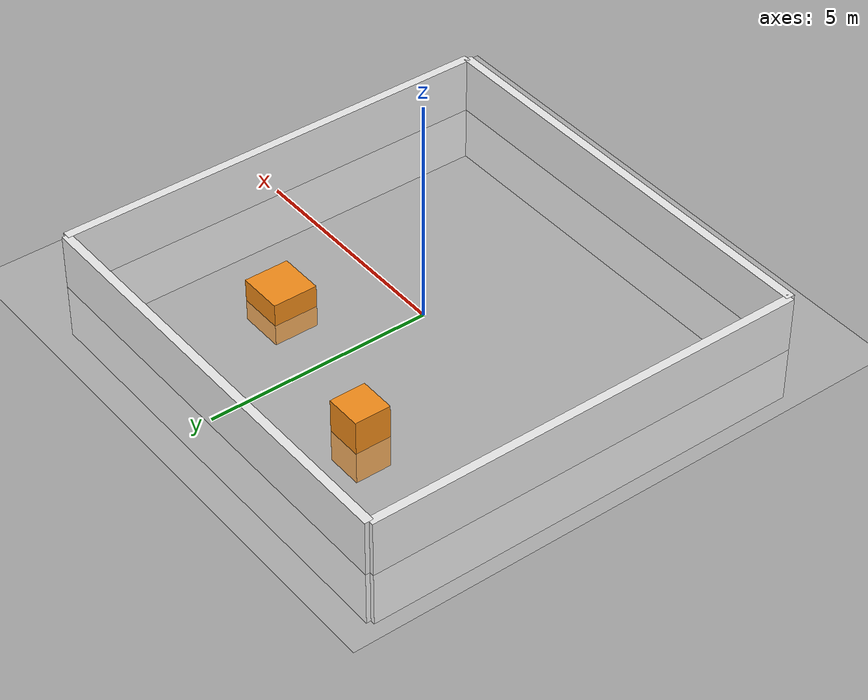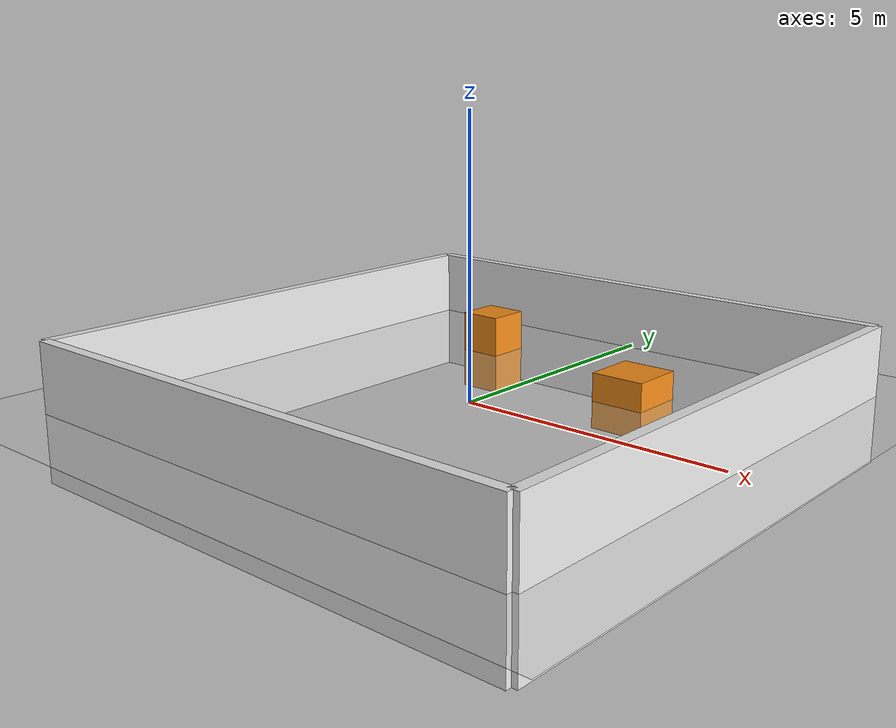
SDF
<?xml version="1.0" ?>
<sdf version="1.6">
  <world name="indoor_office">
    <physics type="ode">
      <max_step_size>0.001</max_step_size>
      <real_time_factor>1</real_time_factor>
    </physics>

    <!-- Lighting -->
    <light name="sun" type="directional">
      <pose>0 0 10 0 0 0</pose>
      <diffuse>0.8 0.8 0.8 1</diffuse>
      <specular>0.2 0.2 0.2 1</specular>
      <attenuation>
        <range>1000</range>
        <constant>0.9</constant>
        <linear>0.01</linear>
        <quadratic>0.001</quadratic>
      </attenuation>
      <direction>-0.5 0.1 -0.9</direction>
    </light>

    <!-- Ground Plane -->
    <model name="ground_plane">
      <static>true</static>
      <link name="link">
        <collision name="collision">
          <geometry>
            <plane>
              <normal>0 0 1</normal>
              <size>100 100</size>
            </plane>
          </geometry>
        </collision>
        <visual name="visual">
          <geometry>
            <plane>
              <normal>0 0 1</normal>
              <size>100 100</size>
            </plane>
          </geometry>
          <material>
            <script>
              <uri>file://media/materials/scripts/gazebo.material</uri>
              <name>Gazebo/Grey</name>
            </script>
          </material>
        </visual>
      </link>
    </model>

    <!-- Walls -->
    <!-- Outer walls -->
    <model name="wall_north">
      <static>true</static>
      <pose>0 5 0 0 0 0</pose>
      <link name="link">
        <collision name="collision">
          <geometry>
            <box>
              <size>10 0.2 2.5</size>
            </box>
          </geometry>
        </collision>
        <visual name="visual">
          <geometry>
            <box>
              <size>10 0.2 2.5</size>
            </box>
          </geometry>
          <material>
            <script>
              <uri>file://media/materials/scripts/gazebo.material</uri>
              <name>Gazebo/White</name>
            </script>
          </material>
        </visual>
      </link>
    </model>

    <model name="wall_south">
      <static>true</static>
      <pose>0 -5 0 0 0 0</pose>
      <link name="link">
        <collision name="collision">
          <geometry>
            <box>
              <size>10 0.2 2.5</size>
            </box>
          </geometry>
        </collision>
        <visual name="visual">
          <geometry>
            <box>
              <size>10 0.2 2.5</size>
            </box>
          </geometry>
          <material>
            <script>
              <uri>file://media/materials/scripts/gazebo.material</uri>
              <name>Gazebo/White</name>
            </script>
          </material>
        </visual>
      </link>
    </model>

    <model name="wall_east">
      <static>true</static>
      <pose>5 0 0 0 0 0</pose>
      <link name="link">
        <collision name="collision">
          <geometry>
            <box>
              <size>0.2 10 2.5</size>
            </box>
          </geometry>
        </collision>
        <visual name="visual">
          <geometry>
            <box>
              <size>0.2 10 2.5</size>
            </box>
          </geometry>
          <material>
            <script>
              <uri>file://media/materials/scripts/gazebo.material</uri>
              <name>Gazebo/White</name>
            </script>
          </material>
        </visual>
      </link>
    </model>

    <model name="wall_west">
      <static>true</static>
      <pose>-5 0 0 0 0 0</pose>
      <link name="link">
        <collision name="collision">
          <geometry>
            <box>
              <size>0.2 10 2.5</size>
            </box>
          </geometry>
        </collision>
        <visual name="visual">
          <geometry>
            <box>
              <size>0.2 10 2.5</size>
            </box>
          </geometry>
          <material>
            <script>
              <uri>file://media/materials/scripts/gazebo.material</uri>
              <name>Gazebo/White</name>
            </script>
          </material>
        </visual>
      </link>
    </model>

    <!-- Interior obstacles -->
    <model name="obstacle_1">
      <static>true</static>
      <pose>2 2 0 0 0 0</pose>
      <link name="link">
        <collision name="collision">
          <geometry>
            <box>
              <size>1 1 1</size>
            </box>
          </geometry>
        </collision>
        <visual name="visual">
          <geometry>
            <box>
              <size>1 1 1</size>
            </box>
          </geometry>
          <material>
            <script>
              <uri>file://media/materials/scripts/gazebo.material</uri>
              <name>Gazebo/Orange</name>
            </script>
          </material>
        </visual>
      </link>
    </model>

    <model name="obstacle_2">
      <static>true</static>
      <pose>-2 3 0 0 0 0</pose>
      <link name="link">
        <collision name="collision">
          <geometry>
            <box>
              <size>0.8 0.8 1.5</size>
            </box>
          </geometry>
        </collision>
        <visual name="visual">
          <geometry>
            <box>
              <size>0.8 0.8 1.5</size>
            </box>
          </geometry>
          <material>
            <script>
              <uri>file://media/materials/scripts/gazebo.material</uri>
              <name>Gazebo/Orange</name>
            </script>
          </material>
        </visual>
      </link>
    </model>

  </world>
</sdf>
